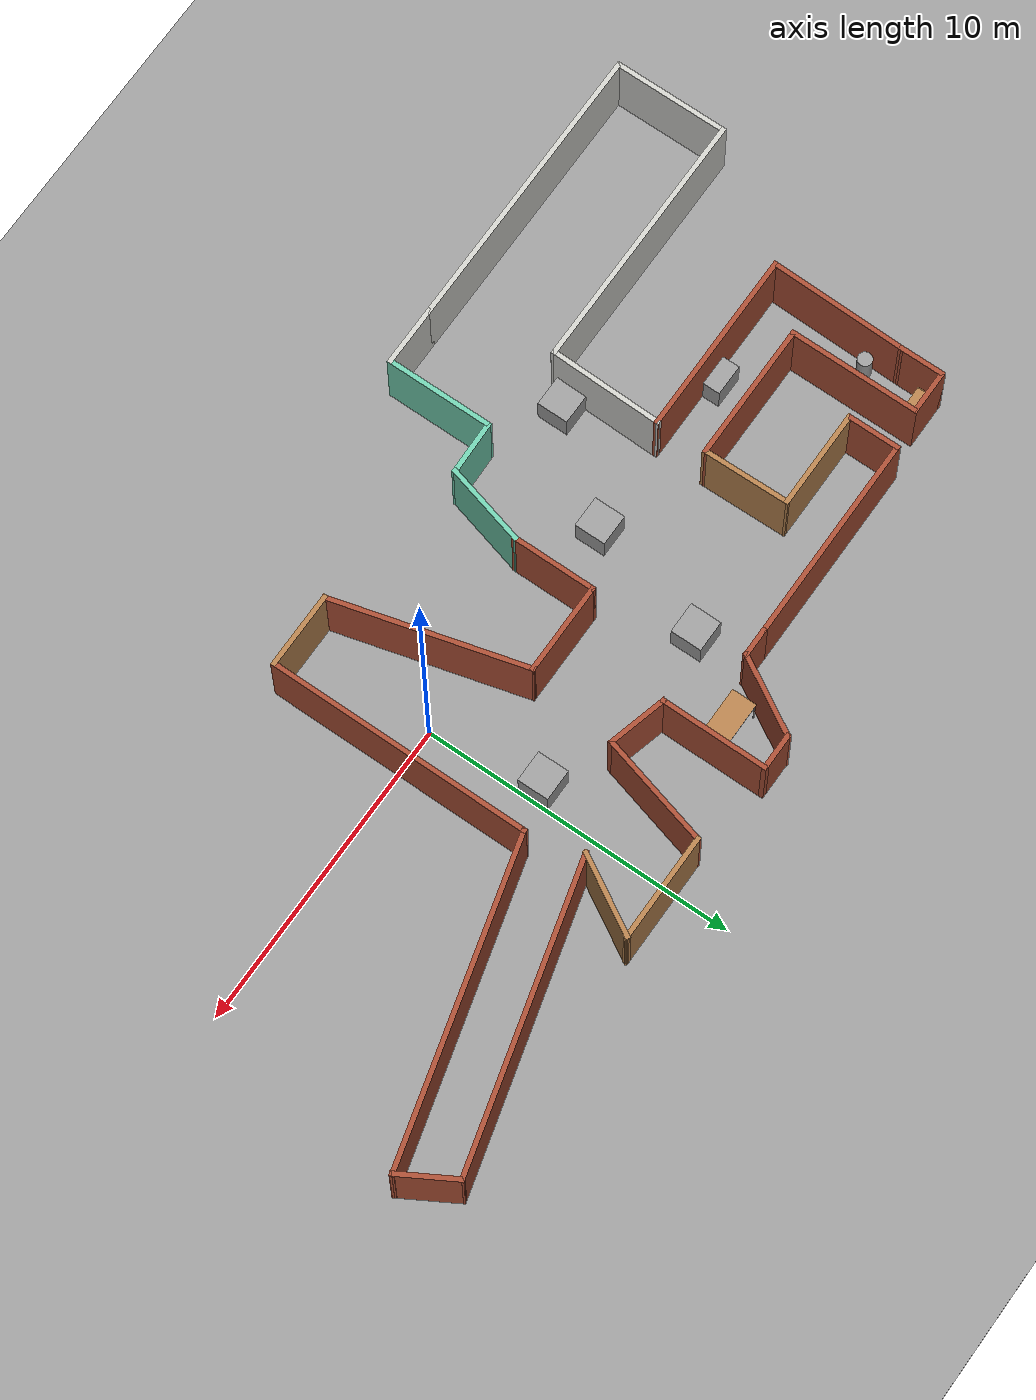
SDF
<sdf version="1.7">
 <world name="default">
  <light name="sun" type="directional">
   <pose>0 0 10 0 -0 0</pose>
   <diffuse>0.8 0.8 0.8 1</diffuse>
   <specular>0.2 0.2 0.2 1</specular>
   <attenuation>
    <range>1000</range>
    <constant>0.9</constant>
    <linear>0.01</linear>
    <quadratic>0.001</quadratic>
   </attenuation>
   <direction>-0.5 0.1 -0.9</direction>
   <spot><inner_angle>0</inner_angle><outer_angle>0</outer_angle><falloff>0</falloff></spot>
  </light>
  <model name="ground_plane">
   <static>1</static>
   <link name="link">
    <collision name="collision">
     <geometry><plane><normal>0 0 1</normal><size>100 100</size></plane></geometry>
     <surface><friction><ode><mu>100</mu><mu2>50</mu2></ode></friction></surface>
    </collision>
    <visual name="visual">
     <cast_shadows>0</cast_shadows>
     <geometry><plane><normal>0 0 1</normal><size>100 100</size></plane></geometry>
     <material>
      <script><uri>file://media/materials/scripts/gazebo.material</uri><name>Gazebo/Grey</name></script>
     </material>
    </visual>
   </link>
  </model>
  <gravity>0 0 -9.8</gravity>
  <magnetic_field>6e-06 2.3e-05 -4.2e-05</magnetic_field>
  <atmosphere type="adiabatic"/>
  <physics type="ode">
   <max_step_size>0.001</max_step_size>
   <real_time_factor>1</real_time_factor>
   <real_time_update_rate>1000</real_time_update_rate>
  </physics>
  <scene><ambient>0.4 0.4 0.4 1</ambient><background>0.7 0.7 0.7 1</background><shadows>1</shadows></scene>
  <audio><device>default</device></audio>
  <spherical_coordinates>
   <surface_model>EARTH_WGS84</surface_model>
   <latitude_deg>0</latitude_deg>
   <longitude_deg>0</longitude_deg>
   <elevation>0</elevation>
   <heading_deg>0</heading_deg>
  </spherical_coordinates>
  <model name="casi">
   <pose>-3.80321 0.95502 0 0 -0 0</pose>
   <link name="Wall_24">
    <collision name="Wall_24_Collision">
     <geometry><box><size>2.75 0.15 2.5</size></box></geometry>
     <pose>0 0 1.25 0 -0 0</pose>
    </collision>
    <visual name="Wall_24_Visual">
     <pose>0 0 1.25 0 -0 0</pose>
     <geometry><box><size>2.75 0.15 2.5</size></box></geometry>
     <material>
      <script><uri>file://media/materials/scripts/gazebo.material</uri><name>Gazebo/Grey</name></script>
      <ambient>0.435294 0.796078 0.67451 1</ambient>
     </material>
     <meta><layer>0</layer></meta>
    </visual>
    <pose>-1.85154 -3.01115 0 0 -0 1.309</pose>
   </link>
   <link name="Wall_25">
    <collision name="Wall_25_Collision">
     <geometry><box><size>2.75 0.15 2.5</size></box></geometry>
     <pose>0 0 1.25 0 -0 0</pose>
    </collision>
    <visual name="Wall_25_Visual">
     <pose>0 0 1.25 0 -0 0</pose>
     <geometry><box><size>2.75 0.15 2.5</size></box></geometry>
     <material>
      <script><uri>file://media/materials/scripts/gazebo.material</uri><name>Gazebo/Bricks</name></script>
      <ambient>1 1 1 1</ambient>
     </material>
     <meta><layer>0</layer></meta>
    </visual>
    <pose>-1.51507 -0.45545 0 0 -0 1.5708</pose>
   </link>
   <link name="Wall_26">
    <collision name="Wall_26_Collision">
     <geometry><box><size>3 0.15 2.5</size></box></geometry>
     <pose>0 0 1.25 0 -0 0</pose>
    </collision>
    <visual name="Wall_26_Visual">
     <pose>0 0 1.25 0 -0 0</pose>
     <geometry><box><size>3 0.15 2.5</size></box></geometry>
     <material>
      <script><uri>file://media/materials/scripts/gazebo.material</uri><name>Gazebo/Bricks</name></script>
      <ambient>1 0.764706 0.305882 1</ambient>
     </material>
     <meta><layer>0</layer></meta>
    </visual>
    <pose>-0.090073 0.84455 0 0 -0 0</pose>
   </link>
   <link name="Wall_27">
    <collision name="Wall_27_Collision">
     <geometry><box><size>6.25 0.15 2.5</size></box></geometry>
     <pose>0 0 1.25 0 -0 0</pose>
    </collision>
    <visual name="Wall_27_Visual">
     <pose>0 0 1.25 0 -0 0</pose>
     <geometry><box><size>6.25 0.15 2.5</size></box></geometry>
     <material>
      <script><uri>file://media/materials/scripts/gazebo.material</uri><name>Gazebo/Bricks</name></script>
      <ambient>1 0.764706 0.305882 1</ambient>
     </material>
     <meta><layer>0</layer></meta>
    </visual>
    <pose>2.12432 -2.10152 0 0 -0 -1.309</pose>
   </link>
   <link name="Wall_28">
    <collision name="Wall_28_Collision">
     <geometry><box><size>2.5 0.15 2.5</size></box></geometry>
     <pose>0 0 1.25 0 -0 0</pose>
    </collision>
    <visual name="Wall_28_Visual">
     <pose>0 0 1.25 0 -0 0</pose>
     <geometry><box><size>2.5 0.15 2.5</size></box></geometry>
     <material>
      <script><uri>file://media/materials/scripts/gazebo.material</uri><name>Gazebo/Wood</name></script>
      <ambient>1 0.764706 0.305882 1</ambient>
     </material>
     <meta><layer>0</layer></meta>
    </visual>
    <pose>4.08872 -5.0476 0 0 -0 0</pose>
   </link>
   <link name="Wall_29">
    <collision name="Wall_29_Collision">
     <geometry><box><size>8.5 0.15 2.5</size></box></geometry>
     <pose>0 0 1.25 0 -0 0</pose>
    </collision>
    <visual name="Wall_29_Visual">
     <pose>0 0 1.25 0 -0 0</pose>
     <geometry><box><size>8.5 0.15 2.5</size></box></geometry>
     <material>
      <script><uri>file://media/materials/scripts/gazebo.material</uri><name>Gazebo/Bricks</name></script>
      <ambient>1 0.764706 0.305882 1</ambient>
     </material>
     <meta><layer>0</layer></meta>
    </visual>
    <pose>5.26372 -0.872598 0 0 -0 1.5708</pose>
   </link>
   <link name="Wall_30">
    <collision name="Wall_30_Collision">
     <geometry><box><size>10.25 0.15 2.5</size></box></geometry>
     <pose>0 0 1.25 0 -0 0</pose>
    </collision>
    <visual name="Wall_30_Visual">
     <pose>0 0 1.25 0 -0 0</pose>
     <geometry><box><size>10.25 0.15 2.5</size></box></geometry>
     <material>
      <script><uri>file://media/materials/scripts/gazebo.material</uri><name>Gazebo/Bricks</name></script>
      <ambient>1 1 1 1</ambient>
     </material>
     <meta><layer>0</layer></meta>
    </visual>
    <pose>10.1416 4.60944 0 0 -0 0.261799</pose>
   </link>
   <link name="Wall_31">
    <collision name="Wall_31_Collision">
     <geometry><box><size>2 0.15 2.5</size></box></geometry>
     <pose>0 0 1.25 0 -0 0</pose>
    </collision>
    <visual name="Wall_31_Visual">
     <pose>0 0 1.25 0 -0 0</pose>
     <geometry><box><size>2 0.15 2.5</size></box></geometry>
     <material>
      <script><uri>file://media/materials/scripts/gazebo.material</uri><name>Gazebo/Bricks</name></script>
      <ambient>1 0.764706 0.305882 1</ambient>
     </material>
     <meta><layer>0</layer></meta>
    </visual>
    <pose>14.5571 6.71755 0 0 -0 2.0944</pose>
   </link>
   <link name="Wall_32">
    <collision name="Wall_32_Collision">
     <geometry><box><size>9.75 0.15 2.5</size></box></geometry>
     <pose>0 0 1.25 0 -0 0</pose>
    </collision>
    <visual name="Wall_32_Visual">
     <pose>0 0 1.25 0 -0 0</pose>
     <geometry><box><size>9.75 0.15 2.5</size></box></geometry>
     <material>
      <script><uri>file://media/materials/scripts/gazebo.material</uri><name>Gazebo/Bricks</name></script>
      <ambient>1 1 1 1</ambient>
     </material>
     <meta><layer>0</layer></meta>
    </visual>
    <pose>9.45813 6.27629 0 0 -0 -2.87979</pose>
   </link>
   <link name="Wall_33">
    <collision name="Wall_33_Collision">
     <geometry><box><size>2.75 0.15 2.5</size></box></geometry>
     <pose>0 0 1.25 0 -0 0</pose>
    </collision>
    <visual name="Wall_33_Visual">
     <pose>0 0 1.25 0 -0 0</pose>
     <geometry><box><size>2.75 0.15 2.5</size></box></geometry>
     <material>
      <script><uri>file://media/materials/scripts/gazebo.material</uri><name>Gazebo/Wood</name></script>
      <ambient>1 0.764706 0.305882 1</ambient>
     </material>
     <meta><layer>0</layer></meta>
    </visual>
    <pose>5.47169 6.15979 0 0 -0 1.0472</pose>
   </link>
   <link name="Wall_34">
    <collision name="Wall_34_Collision">
     <geometry><box><size>3.5 0.15 2.5</size></box></geometry>
     <pose>0 0 1.25 0 -0 0</pose>
    </collision>
    <visual name="Wall_34_Visual">
     <pose>0 0 1.25 0 -0 0</pose>
     <geometry><box><size>3.5 0.15 2.5</size></box></geometry>
     <material>
      <script><uri>file://media/materials/scripts/gazebo.material</uri><name>Gazebo/Wood</name></script>
      <ambient>1 0.764706 0.305882 1</ambient>
     </material>
     <meta><layer>0</layer></meta>
    </visual>
    <pose>4.44669 7.28562 0 0 -0 3.14159</pose>
   </link>
   <link name="Wall_35">
    <collision name="Wall_35_Collision">
     <geometry><box><size>3.75 0.15 2.5</size></box></geometry>
     <pose>0 0 1.25 0 -0 0</pose>
    </collision>
    <visual name="Wall_35_Visual">
     <pose>0 0 1.25 0 -0 0</pose>
     <geometry><box><size>3.75 0.15 2.5</size></box></geometry>
     <material>
      <script><uri>file://media/materials/scripts/gazebo.material</uri><name>Gazebo/Bricks</name></script>
      <ambient>1 1 1 1</ambient>
     </material>
     <meta><layer>0</layer></meta>
    </visual>
    <pose>2.30581 5.54696 0 0 -0 -1.8326</pose>
   </link>
   <link name="Wall_36">
    <collision name="Wall_36_Collision">
     <geometry><box><size>2 0.15 2.5</size></box></geometry>
     <pose>0 0 1.25 0 -0 0</pose>
    </collision>
    <visual name="Wall_36_Visual">
     <pose>0 0 1.25 0 -0 0</pose>
     <geometry><box><size>2 0.15 2.5</size></box></geometry>
     <material>
      <script><uri>file://media/materials/scripts/gazebo.material</uri><name>Gazebo/Bricks</name></script>
      <ambient>1 1 1 1</ambient>
     </material>
     <meta><layer>0</layer></meta>
    </visual>
    <pose>0.946456 4.0477 0 0 -0 2.87979</pose>
   </link>
   <link name="Wall_37">
    <collision name="Wall_37_Collision">
     <geometry><box><size>3.5 0.15 2.5</size></box></geometry>
     <pose>0 0 1.25 0 -0 0</pose>
    </collision>
    <visual name="Wall_37_Visual">
     <pose>0 0 1.25 0 -0 0</pose>
     <geometry><box><size>3.5 0.15 2.5</size></box></geometry>
     <material>
      <script><uri>file://media/materials/scripts/gazebo.material</uri><name>Gazebo/Bricks</name></script>
      <ambient>1 1 1 1</ambient>
     </material>
     <meta><layer>0</layer></meta>
    </visual>
    <pose>0.052975 5.96211 0 0 -0 1.5708</pose>
   </link>
   <link name="Wall_38">
    <collision name="Wall_38_Collision">
     <geometry><box><size>1.25 0.15 2.5</size></box></geometry>
     <pose>0 0 1.25 0 -0 0</pose>
    </collision>
    <visual name="Wall_38_Visual">
     <pose>0 0 1.25 0 -0 0</pose>
     <geometry><box><size>1.25 0.15 2.5</size></box></geometry>
     <material>
      <script><uri>file://media/materials/scripts/gazebo.material</uri><name>Gazebo/Bricks</name></script>
      <ambient>1 1 1 1</ambient>
     </material>
     <meta><layer>0</layer></meta>
    </visual>
    <pose>-0.497025 7.63711 0 0 -0 3.14159</pose>
   </link>
   <link name="Wall_39">
    <collision name="Wall_39_Collision">
     <geometry><box><size>2.75 0.15 2.5</size></box></geometry>
     <pose>0 0 1.25 0 -0 0</pose>
    </collision>
    <visual name="Wall_39_Visual">
     <pose>0 0 1.25 0 -0 0</pose>
     <geometry><box><size>2.75 0.15 2.5</size></box></geometry>
     <material>
      <script><uri>file://media/materials/scripts/gazebo.material</uri><name>Gazebo/Bricks</name></script>
      <ambient>1 1 1 1</ambient>
     </material>
     <meta><layer>0</layer></meta>
    </visual>
    <pose>-1.69703 6.51127 0 0 -0 -2.0944</pose>
   </link>
   <link name="Wall_40">
    <collision name="Wall_40_Collision">
     <geometry><box><size>1 0.15 2.5</size></box></geometry>
     <pose>0 0 1.25 0 -0 0</pose>
    </collision>
    <visual name="Wall_40_Visual">
     <pose>0 0 1.25 0 -0 0</pose>
     <geometry><box><size>1 0.15 2.5</size></box></geometry>
     <material>
      <script><uri>file://media/materials/scripts/gazebo.material</uri><name>Gazebo/Bricks</name></script>
      <ambient>1 1 1 1</ambient>
     </material>
     <meta><layer>0</layer></meta>
    </visual>
    <pose>-2.77203 5.38544 0 0 -0 3.14159</pose>
   </link>
   <link name="Wall_41">
    <collision name="Wall_41_Collision">
     <geometry><box><size>6.75 0.15 2.5</size></box></geometry>
     <pose>0 0 1.25 0 -0 0</pose>
    </collision>
    <visual name="Wall_41_Visual">
     <pose>0 0 1.25 0 -0 0</pose>
     <geometry><box><size>6.75 0.15 2.5</size></box></geometry>
     <material>
      <script><uri>file://media/materials/scripts/gazebo.material</uri><name>Gazebo/Bricks</name></script>
      <ambient>1 0.764706 0.305882 1</ambient>
     </material>
     <meta><layer>0</layer></meta>
    </visual>
    <pose>-6.49702 5.38544 0 0 -0 3.14159</pose>
   </link>
   <link name="Wall_42">
    <collision name="Wall_42_Collision">
     <geometry><box><size>1.75 0.15 2.5</size></box></geometry>
     <pose>0 0 1.25 0 -0 0</pose>
    </collision>
    <visual name="Wall_42_Visual">
     <pose>0 0 1.25 0 -0 0</pose>
     <geometry><box><size>1.75 0.15 2.5</size></box></geometry>
     <material>
      <script><uri>file://media/materials/scripts/gazebo.material</uri><name>Gazebo/Bricks</name></script>
      <ambient>1 1 1 1</ambient>
     </material>
     <meta><layer>0</layer></meta>
    </visual>
    <pose>-9.79702 4.58544 0 0 -0 -1.5708</pose>
   </link>
   <link name="Wall_43">
    <collision name="Wall_43_Collision">
     <geometry><box><size>3.25 0.15 2.5</size></box></geometry>
     <pose>0 0 1.25 0 -0 0</pose>
    </collision>
    <visual name="Wall_43_Visual">
     <pose>0 0 1.25 0 -0 0</pose>
     <geometry><box><size>3.25 0.15 2.5</size></box></geometry>
     <material>
      <script><uri>file://media/materials/scripts/gazebo.material</uri><name>Gazebo/Wood</name></script>
      <ambient>1 0.764706 0.305882 1</ambient>
     </material>
     <meta><layer>0</layer></meta>
    </visual>
    <pose>-8.24703 3.78544 0 0 -0 0</pose>
   </link>
   <link name="Wall_45">
    <collision name="Wall_45_Collision">
     <geometry><box><size>8.5 0.15 2.5</size></box></geometry>
     <pose>0 0 1.25 0 -0 0</pose>
    </collision>
    <visual name="Wall_45_Visual">
     <pose>0 0 1.25 0 -0 0</pose>
     <geometry><box><size>8.5 0.15 2.5</size></box></geometry>
     <material>
      <script><uri>file://media/materials/scripts/gazebo.material</uri><name>Gazebo/CeilingTiled</name></script>
      <ambient>0.435294 0.796078 0.67451 1</ambient>
     </material>
     <meta><layer>0</layer></meta>
    </visual>
    <pose>-10.872 -4.06456 0 0 -0 3.14159</pose>
   </link>
   <link name="Wall_46">
    <collision name="Wall_46_Collision">
     <geometry><box><size>3.75 0.15 2.5</size></box></geometry>
     <pose>0 0 1.25 0 -0 0</pose>
    </collision>
    <visual name="Wall_46_Visual">
     <pose>0 0 1.25 0 -0 0</pose>
     <geometry><box><size>3.75 0.15 2.5</size></box></geometry>
     <material>
      <script><uri>file://media/materials/scripts/gazebo.material</uri><name>Gazebo/CeilingTiled</name></script>
      <ambient>0.435294 0.796078 0.67451 1</ambient>
     </material>
     <meta><layer>0</layer></meta>
    </visual>
    <pose>-15.047 -5.86456 0 0 -0 -1.5708</pose>
   </link>
   <link name="Wall_47">
    <collision name="Wall_47_Collision">
     <geometry><box><size>9.5 0.15 2.5</size></box></geometry>
     <pose>0 0 1.25 0 -0 0</pose>
    </collision>
    <visual name="Wall_47_Visual">
     <pose>0 0 1.25 0 -0 0</pose>
     <geometry><box><size>9.5 0.15 2.5</size></box></geometry>
     <material>
      <script><uri>file://media/materials/scripts/gazebo.material</uri><name>Gazebo/CeilingTiled</name></script>
      <ambient>0.435294 0.796078 0.67451 1</ambient>
     </material>
     <meta><layer>0</layer></meta>
    </visual>
    <pose>-10.372 -7.66456 0 0 -0 0</pose>
   </link>
   <link name="Wall_48">
    <collision name="Wall_48_Collision">
     <geometry><box><size>2 0.15 2.5</size></box></geometry>
     <pose>0 0 1.25 0 -0 0</pose>
    </collision>
    <visual name="Wall_48_Visual">
     <pose>0 0 1.25 0 -0 0</pose>
     <geometry><box><size>2 0.15 2.5</size></box></geometry>
     <material>
      <script><uri>file://media/materials/scripts/gazebo.material</uri><name>Gazebo/CeilingTiled</name></script>
      <ambient>0.435294 0.796078 0.67451 1</ambient>
     </material>
     <meta><layer>0</layer></meta>
    </visual>
    <pose>-4.77203 -7.66456 0 0 -0 0</pose>
   </link>
   <link name="Wall_49">
    <collision name="Wall_49_Collision">
     <geometry><box><size>3.5 0.15 2.5</size></box></geometry>
     <pose>0 0 1.25 0 -0 0</pose>
    </collision>
    <visual name="Wall_49_Visual">
     <pose>0 0 1.25 0 -0 0</pose>
     <geometry><box><size>3.5 0.15 2.5</size></box></geometry>
     <material>
      <script><uri>file://media/materials/scripts/gazebo.material</uri><name>Gazebo/Grey</name></script>
      <ambient>0.435294 0.796078 0.67451 1</ambient>
     </material>
     <meta><layer>0</layer></meta>
    </visual>
    <pose>-3.84702 -5.98956 0 0 -0 1.5708</pose>
   </link>
   <link name="Wall_52">
    <collision name="Wall_52_Collision">
     <geometry><box><size>1.80971 0.15 2.5</size></box></geometry>
     <pose>0 0 1.25 0 -0 0</pose>
    </collision>
    <visual name="Wall_52_Visual">
     <pose>0 0 1.25 0 -0 0</pose>
     <geometry><box><size>1.80971 0.15 2.5</size></box></geometry>
     <material>
      <script><uri>file://media/materials/scripts/gazebo.material</uri><name>Gazebo/Grey</name></script>
      <ambient>0.435294 0.796078 0.67451 1</ambient>
     </material>
     <meta><layer>0</layer></meta>
    </visual>
    <pose>-3.01751 -4.29071 0 0 -0 0.028745</pose>
   </link>
   <link name="Wall_55">
    <collision name="Wall_55_Collision">
     <geometry><box><size>1.5 0.15 2.5</size></box></geometry>
     <pose>0 0 1.25 0 -0 0</pose>
    </collision>
    <visual name="Wall_55_Visual">
     <pose>0 0 1.25 0 -0 0</pose>
     <geometry><box><size>1.5 0.15 2.5</size></box></geometry>
     <material>
      <script><uri>file://media/materials/scripts/gazebo.material</uri><name>Gazebo/Bricks</name></script>
      <ambient>1 1 1 1</ambient>
     </material>
     <meta><layer>0</layer></meta>
    </visual>
    <pose>-12.3544 4.51125 0 0 -0 1.5708</pose>
   </link>
   <link name="Wall_56">
    <collision name="Wall_56_Collision">
     <geometry><box><size>1.5 0.15 2.5</size></box></geometry>
     <pose>0 0 1.25 0 -0 0</pose>
    </collision>
    <visual name="Wall_56_Visual">
     <pose>0 0 1.25 0 -0 0</pose>
     <geometry><box><size>1.5 0.15 2.5</size></box></geometry>
     <material>
      <script><uri>file://media/materials/scripts/gazebo.material</uri><name>Gazebo/Bricks</name></script>
      <ambient>1 0.764706 0.305882 1</ambient>
     </material>
     <meta><layer>0</layer></meta>
    </visual>
    <pose>-11.6794 5.18625 0 0 -0 0</pose>
   </link>
   <link name="Wall_57">
    <collision name="Wall_57_Collision">
     <geometry><box><size>4.25 0.15 2.5</size></box></geometry>
     <pose>0 0 1.25 0 -0 0</pose>
    </collision>
    <visual name="Wall_57_Visual">
     <pose>0 0 1.25 0 -0 0</pose>
     <geometry><box><size>4.25 0.15 2.5</size></box></geometry>
     <material>
      <script><uri>file://media/materials/scripts/gazebo.material</uri><name>Gazebo/Bricks</name></script>
      <ambient>1 0.764706 0.305882 1</ambient>
     </material>
     <meta><layer>0</layer></meta>
    </visual>
    <pose>-11.0044 3.13625 0 0 -0 -1.5708</pose>
   </link>
   <link name="Wall_58">
    <collision name="Wall_58_Collision">
     <geometry><box><size>4.5 0.15 2.5</size></box></geometry>
     <pose>0 0 1.25 0 -0 0</pose>
    </collision>
    <visual name="Wall_58_Visual">
     <pose>0 0 1.25 0 -0 0</pose>
     <geometry><box><size>4.5 0.15 2.5</size></box></geometry>
     <material>
      <script><uri>file://media/materials/scripts/gazebo.material</uri><name>Gazebo/Bricks</name></script>
      <ambient>1 1 1 1</ambient>
     </material>
     <meta><layer>0</layer></meta>
    </visual>
    <pose>-8.82944 1.08625 0 0 -0 0</pose>
   </link>
   <link name="Wall_62">
    <collision name="Wall_62_Collision">
     <geometry><box><size>2.84953 0.15 2.5</size></box></geometry>
     <pose>0 0 1.25 0 -0 0</pose>
    </collision>
    <visual name="Wall_62_Visual">
     <pose>0 0 1.25 0 -0 0</pose>
     <geometry><box><size>2.84953 0.15 2.5</size></box></geometry>
     <material>
      <script><uri>file://media/materials/scripts/gazebo.material</uri><name>Gazebo/Wood</name></script>
      <ambient>1 0.764706 0.305882 1</ambient>
     </material>
     <meta><layer>0</layer></meta>
    </visual>
    <pose>-6.67574 2.43585 0 0 -0 -1.55502</pose>
   </link>
   <link name="Wall_64">
    <collision name="Wall_64_Collision">
     <geometry><box><size>6 0.15 2.5</size></box></geometry>
     <pose>0 0 1.25 0 -0 0</pose>
    </collision>
    <visual name="Wall_64_Visual">
     <pose>0 0 1.25 0 -0 0</pose>
     <geometry><box><size>6 0.15 2.5</size></box></geometry>
     <material>
      <script><uri>file://media/materials/scripts/gazebo.material</uri><name>Gazebo/Bricks</name></script>
      <ambient>1 1 1 1</ambient>
     </material>
     <meta><layer>0</layer></meta>
    </visual>
    <pose>-9.53224 -0.508462 0 0 -0 0</pose>
   </link>
   <link name="Wall_65">
    <collision name="Wall_65_Collision">
     <geometry><box><size>3.70723 0.15 2.5</size></box></geometry>
     <pose>0 0 1.25 0 -0 0</pose>
    </collision>
    <visual name="Wall_65_Visual">
     <pose>0 0 1.25 0 -0 0</pose>
     <geometry><box><size>3.70723 0.15 2.5</size></box></geometry>
     <material>
      <script><uri>file://media/materials/scripts/gazebo.material</uri><name>Gazebo/CeilingTiled</name></script>
      <ambient>0.435294 0.796078 0.67451 1</ambient>
     </material>
     <meta><layer>0</layer></meta>
    </visual>
    <pose>-6.65213 -2.28651 0 0 -0 -1.59604</pose>
   </link>
   <link name="Wall_67">
    <collision name="Wall_67_Collision">
     <geometry><box><size>4.49593 0.15 2.5</size></box></geometry>
     <pose>0 0 1.25 0 -0 0</pose>
    </collision>
    <visual name="Wall_67_Visual">
     <pose>0 0 1.25 0 -0 0</pose>
     <geometry><box><size>4.49593 0.15 2.5</size></box></geometry>
     <material>
      <script><uri>file://media/materials/scripts/gazebo.material</uri><name>Gazebo/Bricks</name></script>
      <ambient>1 1 1 1</ambient>
     </material>
     <meta><layer>0</layer></meta>
    </visual>
    <pose>-12.4058 1.66389 0 0 -0 1.54714</pose>
   </link>
   <static>1</static>
  </model>
  <model name="ground_plane_0">
   <static>1</static>
   <link name="link">
    <collision name="collision">
     <geometry><plane><normal>0 0 1</normal><size>100 100</size></plane></geometry>
     <surface><friction><ode><mu>100</mu><mu2>50</mu2></ode></friction></surface>
    </collision>
    <visual name="visual">
     <cast_shadows>0</cast_shadows>
     <geometry><plane><normal>0 0 1</normal><size>100 100</size></plane></geometry>
     <material>
      <script><uri>file://media/materials/scripts/gazebo.material</uri><name>Gazebo/Grey</name></script>
     </material>
    </visual>
   </link>
   <pose>-12.1323 -4.60566 0 0 -0 0</pose>
  </model>
  <model name="Bookshelf">
   <static>1</static>
   <link name="link">
    <inertial><mass>1</mass></inertial>
    <collision name="back">
     <pose>0 0.005 0.6 0 -0 0</pose>
     <geometry><box><size>0.9 0.01 1.2</size></box></geometry>
    </collision>
    <visual name="visual1">
     <pose>0 0.005 0.6 0 -0 0</pose>
     <geometry><box><size>0.9 0.01 1.2</size></box></geometry>
     <material>
      <diffuse>1 1 1 1</diffuse>
      <script><uri>file://media/materials/scripts/gazebo.material</uri><name>Gazebo/Wood</name></script>
      <pbr><metal><albedo_map>model://Bookshelf/bookshelf_diffuse.jpg</albedo_map></metal></pbr>
     </material>
    </visual>
    <collision name="left_side">
     <pose>0.45 -0.195 0.6 0 -0 0</pose>
     <geometry><box><size>0.02 0.4 1.2</size></box></geometry>
    </collision>
    <visual name="visual2">
     <pose>0.45 -0.195 0.6 0 -0 0</pose>
     <geometry><box><size>0.02 0.4 1.2</size></box></geometry>
     <material>
      <diffuse>1 1 1 1</diffuse>
      <script><uri>file://media/materials/scripts/gazebo.material</uri><name>Gazebo/Wood</name></script>
      <pbr><metal><albedo_map>model://Bookshelf/bookshelf_diffuse.jpg</albedo_map></metal></pbr>
     </material>
    </visual>
    <collision name="right_side">
     <pose>-0.45 -0.195 0.6 0 -0 0</pose>
     <geometry><box><size>0.02 0.4 1.2</size></box></geometry>
    </collision>
    <visual name="visual3">
     <pose>-0.45 -0.195 0.6 0 -0 0</pose>
     <geometry><box><size>0.02 0.4 1.2</size></box></geometry>
     <material>
      <diffuse>1 1 1 1</diffuse>
      <script><uri>file://media/materials/scripts/gazebo.material</uri><name>Gazebo/Wood</name></script>
      <pbr><metal><albedo_map>model://Bookshelf/bookshelf_diffuse.jpg</albedo_map></metal></pbr>
     </material>
    </visual>
    <collision name="bottom">
     <pose>0 -0.195 0.03 0 -0 0</pose>
     <geometry><box><size>0.88 0.4 0.06</size></box></geometry>
    </collision>
    <visual name="visual4">
     <pose>0 -0.195 0.03 0 -0 0</pose>
     <geometry><box><size>0.88 0.4 0.06</size></box></geometry>
     <material>
      <diffuse>1 1 1 1</diffuse>
      <script><uri>file://media/materials/scripts/gazebo.material</uri><name>Gazebo/Wood</name></script>
      <pbr><metal><albedo_map>model://Bookshelf/bookshelf_diffuse.jpg</albedo_map></metal></pbr>
     </material>
    </visual>
    <collision name="top">
     <pose>0 -0.195 1.19 0 -0 0</pose>
     <geometry><box><size>0.88 0.4 0.02</size></box></geometry>
    </collision>
    <visual name="visual5">
     <pose>0 -0.195 1.19 0 -0 0</pose>
     <geometry><box><size>0.88 0.4 0.02</size></box></geometry>
     <material>
      <diffuse>1 1 1 1</diffuse>
      <script><uri>file://media/materials/scripts/gazebo.material</uri><name>Gazebo/Wood</name></script>
      <pbr><metal><albedo_map>model://Bookshelf/bookshelf_diffuse.jpg</albedo_map></metal></pbr>
     </material>
    </visual>
    <collision name="low_shelf">
     <pose>0 -0.195 0.43 0 -0 0</pose>
     <geometry><box><size>0.88 0.4 0.02</size></box></geometry>
    </collision>
    <visual name="visual6">
     <pose>0 -0.195 0.43 0 -0 0</pose>
     <geometry><box><size>0.88 0.4 0.02</size></box></geometry>
     <material>
      <diffuse>1 1 1 1</diffuse>
      <script><uri>file://media/materials/scripts/gazebo.material</uri><name>Gazebo/Wood</name></script>
      <pbr><metal><albedo_map>model://Bookshelf/bookshelf_diffuse.jpg</albedo_map></metal></pbr>
     </material>
    </visual>
    <collision name="high_shelf">
     <pose>0 -0.195 0.8 0 -0 0</pose>
     <geometry><box><size>0.88 0.4 0.02</size></box></geometry>
    </collision>
    <visual name="visual7">
     <pose>0 -0.195 0.8 0 -0 0</pose>
     <geometry><box><size>0.88 0.4 0.02</size></box></geometry>
     <material>
      <diffuse>1 1 1 1</diffuse>
      <script><uri>file://media/materials/scripts/gazebo.material</uri><name>Gazebo/Wood</name></script>
      <pbr><metal><albedo_map>model://Bookshelf/bookshelf_diffuse.jpg</albedo_map></metal></pbr>
     </material>
    </visual>
   </link>
   <pose>-15.4813 5.98372 0 0 -0 0</pose>
  </model>
  <model name="Table">
   <static>1</static>
   <link name="link">
    <collision name="surface">
     <pose>0 0 1 0 -0 0</pose>
     <geometry><box><size>1.5 0.8 0.03</size></box></geometry>
     <surface><friction><ode><mu>0.6</mu><mu2>0.6</mu2></ode></friction></surface>
    </collision>
    <visual name="visual1">
     <pose>0 0 1 0 -0 0</pose>
     <geometry><box><size>1.5 0.8 0.03</size></box></geometry>
     <material>
      <diffuse>1 1 1 1</diffuse>
      <script><uri>file://media/materials/scripts/gazebo.material</uri><name>Gazebo/Wood</name></script>
      <pbr><metal><albedo_map>model://Table/Table_Diffuse.jpg</albedo_map></metal></pbr>
     </material>
    </visual>
    <collision name="front_left_leg">
     <pose>0.68 0.38 0.5 0 -0 0</pose>
     <geometry><cylinder><radius>0.02</radius><length>1</length></cylinder></geometry>
    </collision>
    <visual name="front_left_leg">
     <pose>0.68 0.38 0.5 0 -0 0</pose>
     <geometry><cylinder><radius>0.02</radius><length>1</length></cylinder></geometry>
     <material>
      <diffuse>0.5 0.5 0.5 1</diffuse>
      <script><uri>file://media/materials/scripts/gazebo.material</uri><name>Gazebo/Grey</name></script>
     </material>
    </visual>
    <collision name="front_right_leg">
     <pose>0.68 -0.38 0.5 0 -0 0</pose>
     <geometry><cylinder><radius>0.02</radius><length>1</length></cylinder></geometry>
    </collision>
    <visual name="front_right_leg">
     <pose>0.68 -0.38 0.5 0 -0 0</pose>
     <geometry><cylinder><radius>0.02</radius><length>1</length></cylinder></geometry>
     <material>
      <diffuse>0.5 0.5 0.5 1</diffuse>
      <script><uri>file://media/materials/scripts/gazebo.material</uri><name>Gazebo/Grey</name></script>
     </material>
    </visual>
    <collision name="back_right_leg">
     <pose>-0.68 -0.38 0.5 0 -0 0</pose>
     <geometry><cylinder><radius>0.02</radius><length>1</length></cylinder></geometry>
    </collision>
    <visual name="back_right_leg">
     <pose>-0.68 -0.38 0.5 0 -0 0</pose>
     <geometry><cylinder><radius>0.02</radius><length>1</length></cylinder></geometry>
     <material>
      <diffuse>0.5 0.5 0.5 1</diffuse>
      <script><uri>file://media/materials/scripts/gazebo.material</uri><name>Gazebo/Grey</name></script>
     </material>
    </visual>
    <collision name="back_left_leg">
     <pose>-0.68 0.38 0.5 0 -0 0</pose>
     <geometry><cylinder><radius>0.02</radius><length>1</length></cylinder></geometry>
    </collision>
    <visual name="back_left_leg">
     <pose>-0.68 0.38 0.5 0 -0 0</pose>
     <geometry><cylinder><radius>0.02</radius><length>1</length></cylinder></geometry>
     <material>
      <diffuse>0.5 0.5 0.5 1</diffuse>
      <script><uri>file://media/materials/scripts/gazebo.material</uri><name>Gazebo/Grey</name></script>
     </material>
    </visual>
   </link>
   <pose>-4.80572 6.75138 0 0 -0 0</pose>
  </model>
  <model name="Untitled">
   <link name="link_0">
    <inertial>
     <mass>1</mass>
     <inertia>
      <ixx>0.166667</ixx>
      <ixy>0</ixy>
      <ixz>0</ixz>
      <iyy>0.166667</iyy>
      <iyz>0</iyz>
      <izz>0.166667</izz>
     </inertia>
    </inertial>
    <pose>5.61758 1.99442 0 0 -0 0</pose>
    <visual name="visual">
     <geometry><box><size>1 1 1</size></box></geometry>
     <material>
      <lighting>1</lighting>
      <script><uri>file://media/materials/scripts/gazebo.material</uri><name>Gazebo/Grey</name></script>
      <shader type="pixel"/>
     </material>
    </visual>
    <collision name="collision">
     <geometry><box><size>1 1 1</size></box></geometry>
     <surface>
      <friction>
       <ode><mu>1</mu><mu2>1</mu2><fdir1>0 0 0</fdir1><slip1>0</slip1><slip2>0</slip2></ode>
       <torsional>
        <coefficient>1</coefficient>
        <patch_radius>0</patch_radius>
        <surface_radius>0</surface_radius>
        <use_patch_radius>1</use_patch_radius>
        <ode><slip>0</slip></ode>
       </torsional>
      </friction>
      <bounce><restitution_coefficient>0</restitution_coefficient><threshold>1e+06</threshold></bounce>
      <contact>
       <collide_without_contact>0</collide_without_contact>
       <collide_without_contact_bitmask>1</collide_without_contact_bitmask>
       <collide_bitmask>1</collide_bitmask>
       <ode>
        <soft_cfm>0</soft_cfm>
        <soft_erp>0.2</soft_erp>
        <kp>1e+13</kp>
        <kd>1</kd>
        <max_vel>0.01</max_vel>
        <min_depth>0</min_depth>
       </ode>
       <bullet>
        <split_impulse>1</split_impulse>
        <split_impulse_penetration_threshold>-0.01</split_impulse_penetration_threshold>
        <soft_cfm>0</soft_cfm>
        <soft_erp>0.2</soft_erp>
        <kp>1e+13</kp>
        <kd>1</kd>
       </bullet>
      </contact>
     </surface>
    </collision>
   </link>
   <link name="link_1">
    <inertial>
     <mass>1</mass>
     <inertia>
      <ixx>0.166667</ixx>
      <ixy>0</ixy>
      <ixz>0</ixz>
      <iyy>0.166667</iyy>
      <iyz>0</iyz>
      <izz>0.166667</izz>
     </inertia>
    </inertial>
    <pose>-0.362261 2.97861 0 0 -0 0</pose>
    <visual name="visual">
     <geometry><box><size>1 1 1</size></box></geometry>
     <material>
      <lighting>1</lighting>
      <script><uri>file://media/materials/scripts/gazebo.material</uri><name>Gazebo/Grey</name></script>
      <shader type="pixel"/>
     </material>
    </visual>
    <collision name="collision">
     <geometry><box><size>1 1 1</size></box></geometry>
     <surface>
      <friction>
       <ode><mu>1</mu><mu2>1</mu2><fdir1>0 0 0</fdir1><slip1>0</slip1><slip2>0</slip2></ode>
       <torsional>
        <coefficient>1</coefficient>
        <patch_radius>0</patch_radius>
        <surface_radius>0</surface_radius>
        <use_patch_radius>1</use_patch_radius>
        <ode><slip>0</slip></ode>
       </torsional>
      </friction>
      <bounce><restitution_coefficient>0</restitution_coefficient><threshold>1e+06</threshold></bounce>
      <contact>
       <collide_without_contact>0</collide_without_contact>
       <collide_without_contact_bitmask>1</collide_without_contact_bitmask>
       <collide_bitmask>1</collide_bitmask>
       <ode>
        <soft_cfm>0</soft_cfm>
        <soft_erp>0.2</soft_erp>
        <kp>1e+13</kp>
        <kd>1</kd>
        <max_vel>0.01</max_vel>
        <min_depth>0</min_depth>
       </ode>
       <bullet>
        <split_impulse>1</split_impulse>
        <split_impulse_penetration_threshold>-0.01</split_impulse_penetration_threshold>
        <soft_cfm>0</soft_cfm>
        <soft_erp>0.2</soft_erp>
        <kp>1e+13</kp>
        <kd>1</kd>
       </bullet>
      </contact>
     </surface>
    </collision>
   </link>
   <link name="link_2">
    <inertial>
     <mass>1</mass>
     <inertia>
      <ixx>0.166667</ixx>
      <ixy>0</ixy>
      <ixz>0</ixz>
      <iyy>0.166667</iyy>
      <iyz>0</iyz>
      <izz>0.166667</izz>
     </inertia>
    </inertial>
    <pose>-1.42467 -1.00637 0 0 -0 0</pose>
    <visual name="visual">
     <geometry><box><size>1 1 1</size></box></geometry>
     <material>
      <lighting>1</lighting>
      <script><uri>file://media/materials/scripts/gazebo.material</uri><name>Gazebo/Grey</name></script>
      <shader type="pixel"/>
     </material>
    </visual>
    <collision name="collision">
     <geometry><box><size>1 1 1</size></box></geometry>
     <surface>
      <friction>
       <ode><mu>1</mu><mu2>1</mu2><fdir1>0 0 0</fdir1><slip1>0</slip1><slip2>0</slip2></ode>
       <torsional>
        <coefficient>1</coefficient>
        <patch_radius>0</patch_radius>
        <surface_radius>0</surface_radius>
        <use_patch_radius>1</use_patch_radius>
        <ode><slip>0</slip></ode>
       </torsional>
      </friction>
      <bounce><restitution_coefficient>0</restitution_coefficient><threshold>1e+06</threshold></bounce>
      <contact>
       <collide_without_contact>0</collide_without_contact>
       <collide_without_contact_bitmask>1</collide_without_contact_bitmask>
       <collide_bitmask>1</collide_bitmask>
       <ode>
        <soft_cfm>0</soft_cfm>
        <soft_erp>0.2</soft_erp>
        <kp>1e+13</kp>
        <kd>1</kd>
        <max_vel>0.01</max_vel>
        <min_depth>0</min_depth>
       </ode>
       <bullet>
        <split_impulse>1</split_impulse>
        <split_impulse_penetration_threshold>-0.01</split_impulse_penetration_threshold>
        <soft_cfm>0</soft_cfm>
        <soft_erp>0.2</soft_erp>
        <kp>1e+13</kp>
        <kd>1</kd>
       </bullet>
      </contact>
     </surface>
    </collision>
   </link>
   <link name="link_3">
    <inertial>
     <mass>1</mass>
     <inertia>
      <ixx>0.166667</ixx>
      <ixy>0</ixy>
      <ixz>0</ixz>
      <iyy>0.166667</iyy>
      <iyz>0</iyz>
      <izz>0.166667</izz>
     </inertia>
    </inertial>
    <pose>-3.83065 -3.96667 0 0 -0 0</pose>
    <visual name="visual">
     <geometry><box><size>1 1 1</size></box></geometry>
     <material>
      <lighting>1</lighting>
      <script><uri>file://media/materials/scripts/gazebo.material</uri><name>Gazebo/Grey</name></script>
      <shader type="pixel"/>
     </material>
    </visual>
    <collision name="collision">
     <geometry><box><size>1 1 1</size></box></geometry>
     <surface>
      <friction>
       <ode><mu>1</mu><mu2>1</mu2><fdir1>0 0 0</fdir1><slip1>0</slip1><slip2>0</slip2></ode>
       <torsional>
        <coefficient>1</coefficient>
        <patch_radius>0</patch_radius>
        <surface_radius>0</surface_radius>
        <use_patch_radius>1</use_patch_radius>
        <ode><slip>0</slip></ode>
       </torsional>
      </friction>
      <bounce><restitution_coefficient>0</restitution_coefficient><threshold>1e+06</threshold></bounce>
      <contact>
       <collide_without_contact>0</collide_without_contact>
       <collide_without_contact_bitmask>1</collide_without_contact_bitmask>
       <collide_bitmask>1</collide_bitmask>
       <ode>
        <soft_cfm>0</soft_cfm>
        <soft_erp>0.2</soft_erp>
        <kp>1e+13</kp>
        <kd>1</kd>
        <max_vel>0.01</max_vel>
        <min_depth>0</min_depth>
       </ode>
       <bullet>
        <split_impulse>1</split_impulse>
        <split_impulse_penetration_threshold>-0.01</split_impulse_penetration_threshold>
        <soft_cfm>0</soft_cfm>
        <soft_erp>0.2</soft_erp>
        <kp>1e+13</kp>
        <kd>1</kd>
       </bullet>
      </contact>
     </surface>
    </collision>
   </link>
   <static>0</static>
   <pose>-6.12582 1.50567 0.499995 4e-06 -0 0</pose>
  </model>
  <model name="unit_box">
   <pose>-13.1294 0.795404 0.499998 -1e-06 1e-06 0</pose>
   <link name="link">
    <inertial>
     <mass>1</mass>
     <inertia>
      <ixx>0.166667</ixx>
      <ixy>0</ixy>
      <ixz>0</ixz>
      <iyy>0.166667</iyy>
      <iyz>0</iyz>
      <izz>0.166667</izz>
     </inertia>
    </inertial>
    <collision name="collision"><geometry><box><size>1 0.547694 1</size></box></geometry></collision>
    <visual name="visual">
     <geometry><box><size>1 0.547694 1</size></box></geometry>
     <material>
      <script><name>Gazebo/Grey</name><uri>file://media/materials/scripts/gazebo.material</uri></script>
     </material>
    </visual>
   </link>
  </model>
  <model name="unit_cylinder">
   <pose>-15.8656 3.84756 0.5 0 -0 1e-06</pose>
   <link name="link">
    <inertial>
     <mass>1</mass>
     <inertia><ixx>0.145833</ixx><ixy>0</ixy><ixz>0</ixz><iyy>0.145833</iyy><iyz>0</iyz><izz>0.125</izz></inertia>
    </inertial>
    <collision name="collision">
     <geometry><cylinder><radius>0.226053</radius><length>1</length></cylinder></geometry>
    </collision>
    <visual name="visual">
     <geometry><cylinder><radius>0.226053</radius><length>1</length></cylinder></geometry>
     <material>
      <script><name>Gazebo/Grey</name><uri>file://media/materials/scripts/gazebo.material</uri></script>
     </material>
    </visual>
   </link>
  </model>
 </world>
</sdf>
